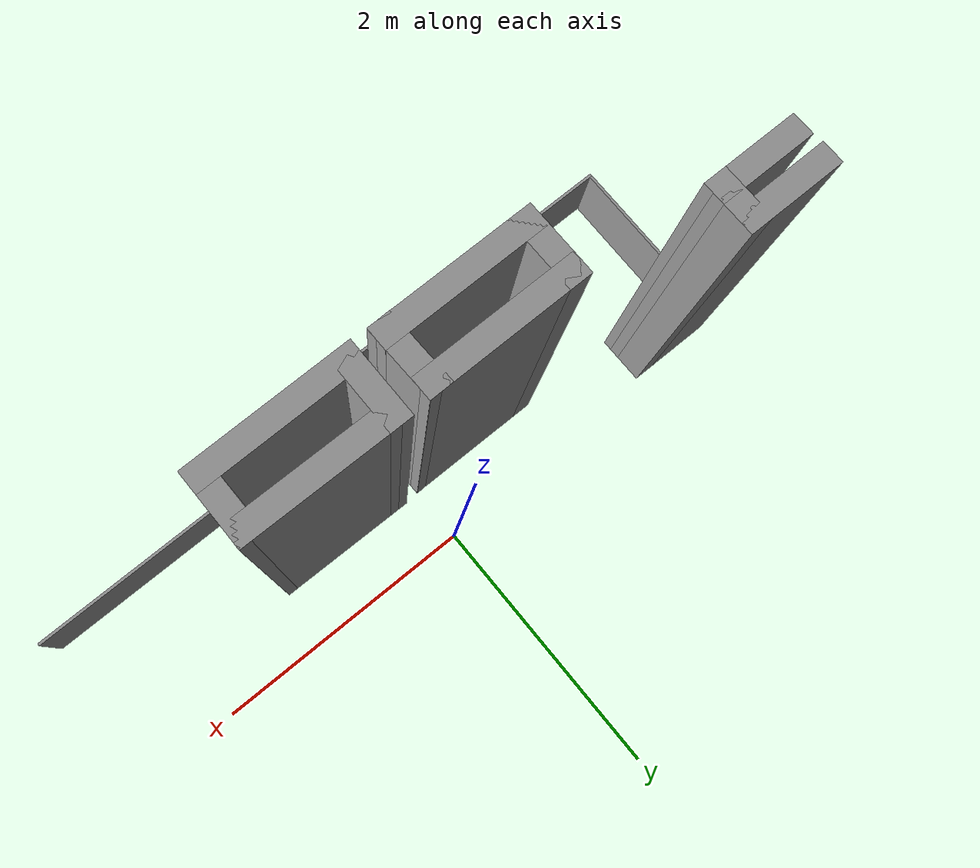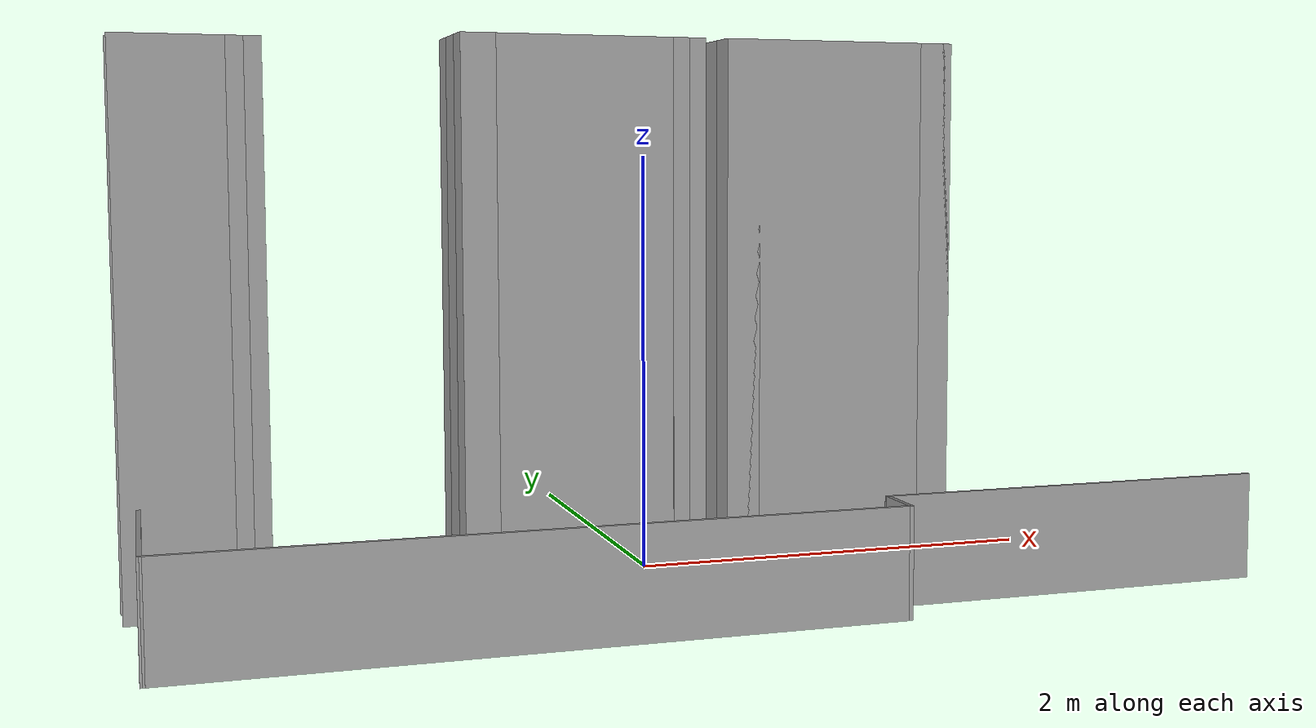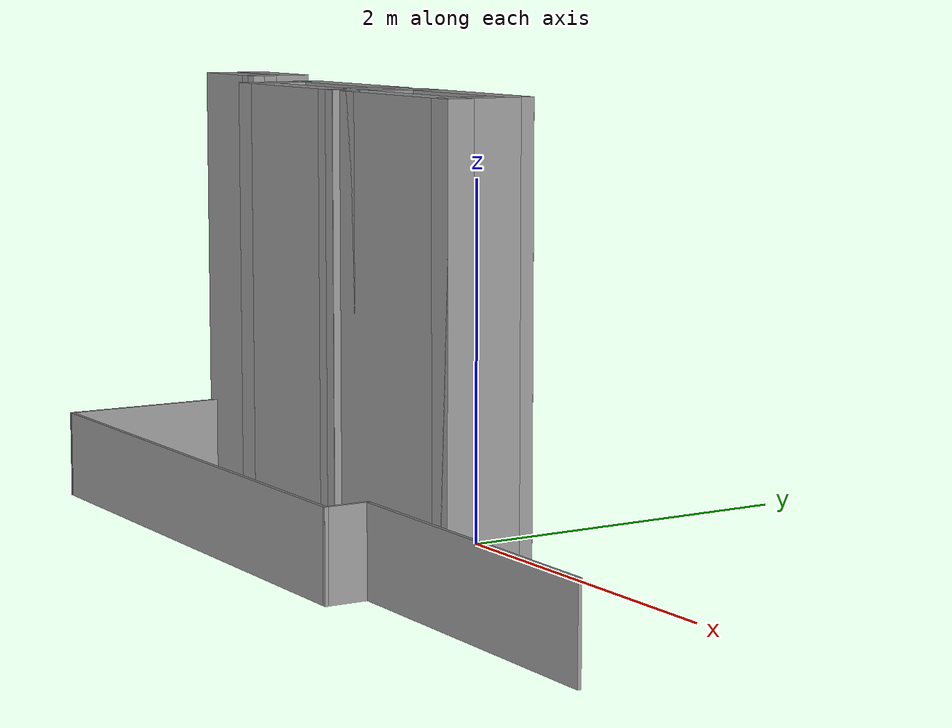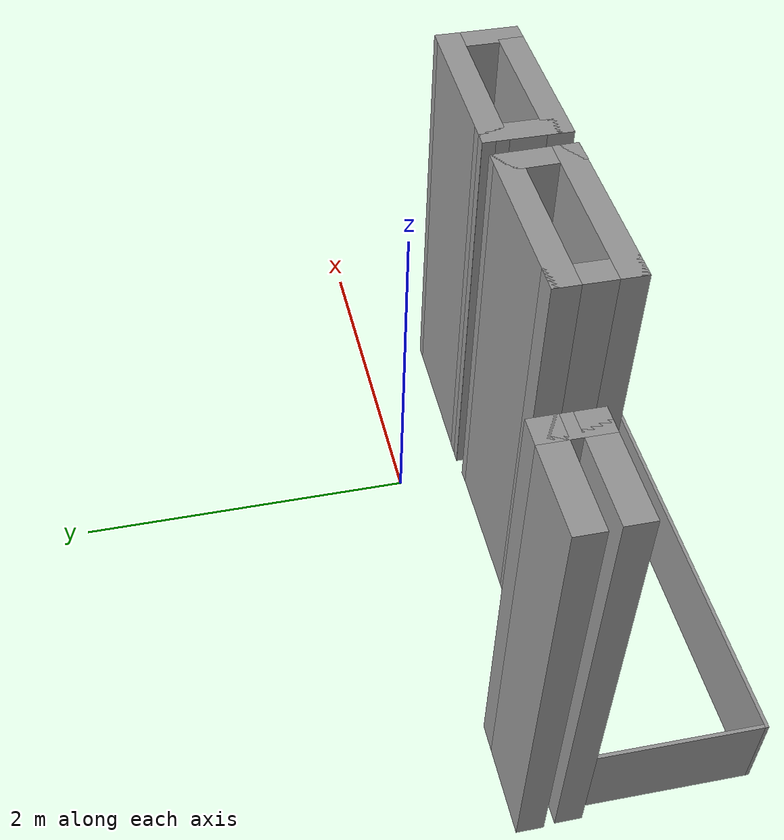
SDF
<?xml version='1.0'?>
<sdf version='1.7'>
  <model name='”turtlebot3_ttk4192.world'>
    <pose>0.107395 -0.688546 0 0 -0 0</pose>
    <link name='Wall_0'>
      <collision name='Wall_0_Collision'>
        <geometry>
          <box>
            <size>3.17638 0.02 0.5</size>
          </box>
        </geometry>
        <pose>0 0 0.25 0 -0 0</pose>
      </collision>
      <visual name='Wall_0_Visual'>
        <pose>0 0 0.25 0 -0 0</pose>
        <geometry>
          <box>
            <size>3.17638 0.02 0.5</size>
          </box>
        </geometry>
        <material>
          <script>
            <uri>file://media/materials/scripts/gazebo.material</uri>
            <name>Gazebo/Grey</name>
          </script>
          <ambient>1 1 1 1</ambient>
        </material>
        <meta>
          <layer>0</layer>
        </meta>
      </visual>
      <pose>-0.8975 -0.678453 0 0 -0 3.14159</pose>
    </link>
    <link name='Wall_10'>
      <collision name='Wall_10_Collision'>
        <geometry>
          <box>
            <size>0.3616 0.15 2.5</size>
          </box>
        </geometry>
        <pose>0 0 1.25 0 -0 0</pose>
      </collision>
      <visual name='Wall_10_Visual'>
        <pose>0 0 1.25 0 -0 0</pose>
        <geometry>
          <box>
            <size>0.3616 0.15 2.5</size>
          </box>
        </geometry>
        <material>
          <script>
            <uri>file://media/materials/scripts/gazebo.material</uri>
            <name>Gazebo/Grey</name>
          </script>
          <ambient>1 1 1 1</ambient>
        </material>
        <meta>
          <layer>0</layer>
        </meta>
      </visual>
      <pose>-1.99069 0.450082 0 0 -0 1.5708</pose>
    </link>
    <link name='Wall_11'>
      <collision name='Wall_11_Collision'>
        <geometry>
          <box>
            <size>0.634917 0.15 2.5</size>
          </box>
        </geometry>
        <pose>0 0 1.25 0 -0 0</pose>
      </collision>
      <visual name='Wall_11_Visual'>
        <pose>0 0 1.25 0 -0 0</pose>
        <geometry>
          <box>
            <size>0.634917 0.15 2.5</size>
          </box>
        </geometry>
        <material>
          <script>
            <uri>file://media/materials/scripts/gazebo.material</uri>
            <name>Gazebo/Grey</name>
          </script>
          <ambient>1 1 1 1</ambient>
        </material>
        <meta>
          <layer>0</layer>
        </meta>
      </visual>
      <pose>-2.23315 0.555882 0 0 -0 3.14159</pose>
    </link>
    <link name='Wall_13'>
      <collision name='Wall_13_Collision'>
        <geometry>
          <box>
            <size>0.485149 0.15 2.5</size>
          </box>
        </geometry>
        <pose>0 0 1.25 0 -0 0</pose>
      </collision>
      <visual name='Wall_13_Visual'>
        <pose>0 0 1.25 0 -0 0</pose>
        <geometry>
          <box>
            <size>0.485149 0.15 2.5</size>
          </box>
        </geometry>
        <material>
          <script>
            <uri>file://media/materials/scripts/gazebo.material</uri>
            <name>Gazebo/Grey</name>
          </script>
          <ambient>1 1 1 1</ambient>
        </material>
        <meta>
          <layer>0</layer>
        </meta>
      </visual>
      <pose>-1.08257 0.035699 0 0 -0 -1.5708</pose>
    </link>
    <link name='Wall_14'>
      <collision name='Wall_14_Collision'>
        <geometry>
          <box>
            <size>1.06698 0.15 2.5</size>
          </box>
        </geometry>
        <pose>0 0 1.25 0 -0 0</pose>
      </collision>
      <visual name='Wall_14_Visual'>
        <pose>0 0 1.25 0 -0 0</pose>
        <geometry>
          <box>
            <size>1.06698 0.15 2.5</size>
          </box>
        </geometry>
        <material>
          <script>
            <uri>file://media/materials/scripts/gazebo.material</uri>
            <name>Gazebo/Grey</name>
          </script>
          <ambient>1 1 1 1</ambient>
        </material>
        <meta>
          <layer>0</layer>
        </meta>
      </visual>
      <pose>-0.624105 -0.131818 0 0 -0 0</pose>
    </link>
    <link name='Wall_15'>
      <collision name='Wall_15_Collision'>
        <geometry>
          <box>
            <size>0.485149 0.15 2.5</size>
          </box>
        </geometry>
        <pose>0 0 1.25 0 -0 0</pose>
      </collision>
      <visual name='Wall_15_Visual'>
        <pose>0 0 1.25 0 -0 0</pose>
        <geometry>
          <box>
            <size>0.485149 0.15 2.5</size>
          </box>
        </geometry>
        <material>
          <script>
            <uri>file://media/materials/scripts/gazebo.material</uri>
            <name>Gazebo/Grey</name>
          </script>
          <ambient>1 1 1 1</ambient>
        </material>
        <meta>
          <layer>0</layer>
        </meta>
      </visual>
      <pose>-0.170047 0.035699 0 0 -0 1.59711</pose>
    </link>
    <link name='Wall_16'>
      <collision name='Wall_16_Collision'>
        <geometry>
          <box>
            <size>1.05816 0.15 2.5</size>
          </box>
        </geometry>
        <pose>0 0 1.25 0 -0 0</pose>
      </collision>
      <visual name='Wall_16_Visual'>
        <pose>0 0 1.25 0 -0 0</pose>
        <geometry>
          <box>
            <size>1.05816 0.15 2.5</size>
          </box>
        </geometry>
        <material>
          <script>
            <uri>file://media/materials/scripts/gazebo.material</uri>
            <name>Gazebo/Grey</name>
          </script>
          <ambient>1 1 1 1</ambient>
        </material>
        <meta>
          <layer>0</layer>
        </meta>
      </visual>
      <pose>-0.628513 0.203215 0 0 -0 3.14159</pose>
    </link>
    <link name='Wall_18'>
      <collision name='Wall_18_Collision'>
        <geometry>
          <box>
            <size>0.502667 0.15 2.5</size>
          </box>
        </geometry>
        <pose>0 0 1.25 0 -0 0</pose>
      </collision>
      <visual name='Wall_18_Visual'>
        <pose>0 0 1.25 0 -0 0</pose>
        <geometry>
          <box>
            <size>0.502667 0.15 2.5</size>
          </box>
        </geometry>
        <material>
          <script>
            <uri>file://media/materials/scripts/gazebo.material</uri>
            <name>Gazebo/Grey</name>
          </script>
          <ambient>1 1 1 1</ambient>
        </material>
        <meta>
          <layer>0</layer>
        </meta>
      </visual>
      <pose>0.081228 0.035699 0 0 -0 -1.5708</pose>
    </link>
    <link name='Wall_19'>
      <collision name='Wall_19_Collision'>
        <geometry>
          <box>
            <size>1.06698 0.15 2.5</size>
          </box>
        </geometry>
        <pose>0 0 1.25 0 -0 0</pose>
      </collision>
      <visual name='Wall_19_Visual'>
        <pose>0 0 1.25 0 -0 0</pose>
        <geometry>
          <box>
            <size>1.06698 0.15 2.5</size>
          </box>
        </geometry>
        <material>
          <script>
            <uri>file://media/materials/scripts/gazebo.material</uri>
            <name>Gazebo/Grey</name>
          </script>
          <ambient>1 1 1 1</ambient>
        </material>
        <meta>
          <layer>0</layer>
        </meta>
      </visual>
      <pose>0.539695 -0.140635 0 0 -0 0</pose>
    </link>
    <link name='Wall_20'>
      <collision name='Wall_20_Collision'>
        <geometry>
          <box>
            <size>0.49385 0.15 2.5</size>
          </box>
        </geometry>
        <pose>0 0 1.25 0 -0 0</pose>
      </collision>
      <visual name='Wall_20_Visual'>
        <pose>0 0 1.25 0 -0 0</pose>
        <geometry>
          <box>
            <size>0.49385 0.15 2.5</size>
          </box>
        </geometry>
        <material>
          <script>
            <uri>file://media/materials/scripts/gazebo.material</uri>
            <name>Gazebo/Grey</name>
          </script>
          <ambient>1 1 1 1</ambient>
        </material>
        <meta>
          <layer>0</layer>
        </meta>
      </visual>
      <pose>0.998162 0.03129 0 0 -0 1.5708</pose>
    </link>
    <link name='Wall_21'>
      <collision name='Wall_21_Collision'>
        <geometry>
          <box>
            <size>1.06698 0.15 2.5</size>
          </box>
        </geometry>
        <pose>0 0 1.25 0 -0 0</pose>
      </collision>
      <visual name='Wall_21_Visual'>
        <pose>0 0 1.25 0 -0 0</pose>
        <geometry>
          <box>
            <size>1.06698 0.15 2.5</size>
          </box>
        </geometry>
        <material>
          <script>
            <uri>file://media/materials/scripts/gazebo.material</uri>
            <name>Gazebo/Grey</name>
          </script>
          <ambient>1 1 1 1</ambient>
        </material>
        <meta>
          <layer>0</layer>
        </meta>
      </visual>
      <pose>0.539695 0.207624 0 0 -0 3.13198</pose>
    </link>
    <link name='Wall_23'>
      <collision name='Wall_23_Collision'>
        <geometry>
          <box>
            <size>0.258222 0.02 0.5</size>
          </box>
        </geometry>
        <pose>0 0 0.25 0 -0 0</pose>
      </collision>
      <visual name='Wall_23_Visual'>
        <pose>0 0 0.25 0 -0 0</pose>
        <geometry>
          <box>
            <size>0.258222 0.02 0.5</size>
          </box>
        </geometry>
        <material>
          <script>
            <uri>file://media/materials/scripts/gazebo.material</uri>
            <name>Gazebo/Grey</name>
          </script>
          <ambient>1 1 1 1</ambient>
        </material>
        <meta>
          <layer>0</layer>
        </meta>
      </visual>
      <pose>0.680683 -0.559428 0 0 -0 1.57014</pose>
    </link>
    <link name='Wall_24'>
      <collision name='Wall_24_Collision'>
        <geometry>
          <box>
            <size>1.87984 0.02 0.5</size>
          </box>
        </geometry>
        <pose>0 0 0.25 0 -0 0</pose>
      </collision>
      <visual name='Wall_24_Visual'>
        <pose>0 0 0.25 0 -0 0</pose>
        <geometry>
          <box>
            <size>1.87984 0.02 0.5</size>
          </box>
        </geometry>
        <material>
          <script>
            <uri>file://media/materials/scripts/gazebo.material</uri>
            <name>Gazebo/Grey</name>
          </script>
          <ambient>1 1 1 1</ambient>
        </material>
        <meta>
          <layer>0</layer>
        </meta>
      </visual>
      <pose>1.61068 -0.440428 0 0 -0 -2.8e-05</pose>
    </link>
    <link name='Wall_7'>
      <collision name='Wall_7_Collision'>
        <geometry>
          <box>
            <size>1.04304 0.02 0.5</size>
          </box>
        </geometry>
        <pose>0 0 0.25 0 -0 0</pose>
      </collision>
      <visual name='Wall_7_Visual'>
        <pose>0 0 0.25 0 -0 0</pose>
        <geometry>
          <box>
            <size>1.04304 0.02 0.5</size>
          </box>
        </geometry>
        <material>
          <script>
            <uri>file://media/materials/scripts/gazebo.material</uri>
            <name>Gazebo/Grey</name>
          </script>
          <ambient>1 1 1 1</ambient>
        </material>
        <meta>
          <layer>0</layer>
        </meta>
      </visual>
      <pose>-2.471 -0.166953 0 0 -0 1.56179</pose>
    </link>
    <link name='Wall_9'>
      <collision name='Wall_9_Collision'>
        <geometry>
          <box>
            <size>0.625707 0.15 2.5</size>
          </box>
        </geometry>
        <pose>0 0 1.25 0 -0 0</pose>
      </collision>
      <visual name='Wall_9_Visual'>
        <pose>0 0 1.25 0 -0 0</pose>
        <geometry>
          <box>
            <size>0.625707 0.15 2.5</size>
          </box>
        </geometry>
        <material>
          <script>
            <uri>file://media/materials/scripts/gazebo.material</uri>
            <name>Gazebo/Grey</name>
          </script>
          <ambient>1 1 1 1</ambient>
        </material>
        <meta>
          <layer>0</layer>
        </meta>
      </visual>
      <pose>-2.22854 0.344414 0 0 -0 -0.000554</pose>
    </link>
    <static>1</static>
  </model>
</sdf>
